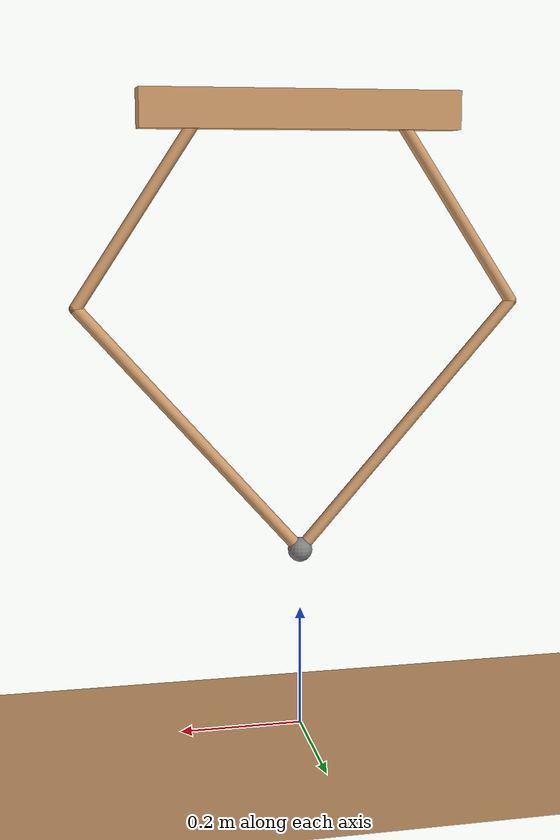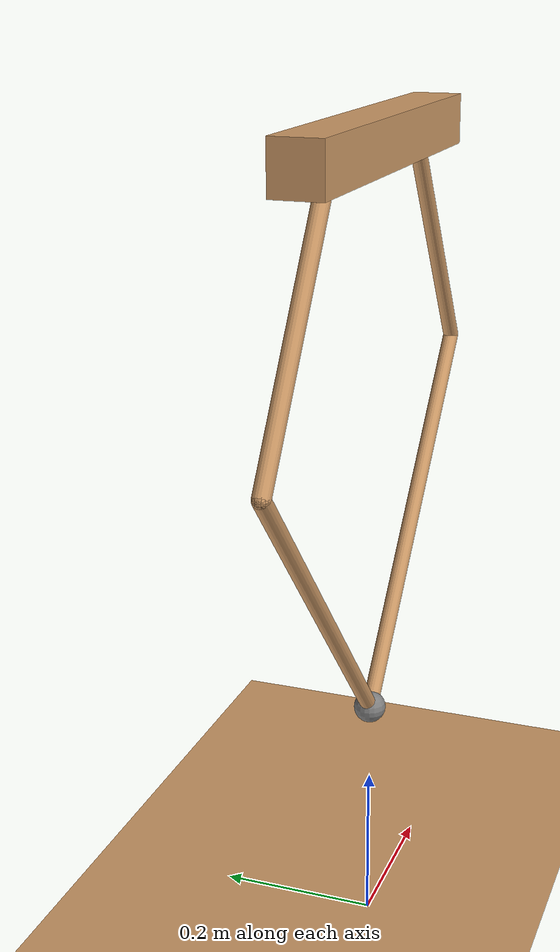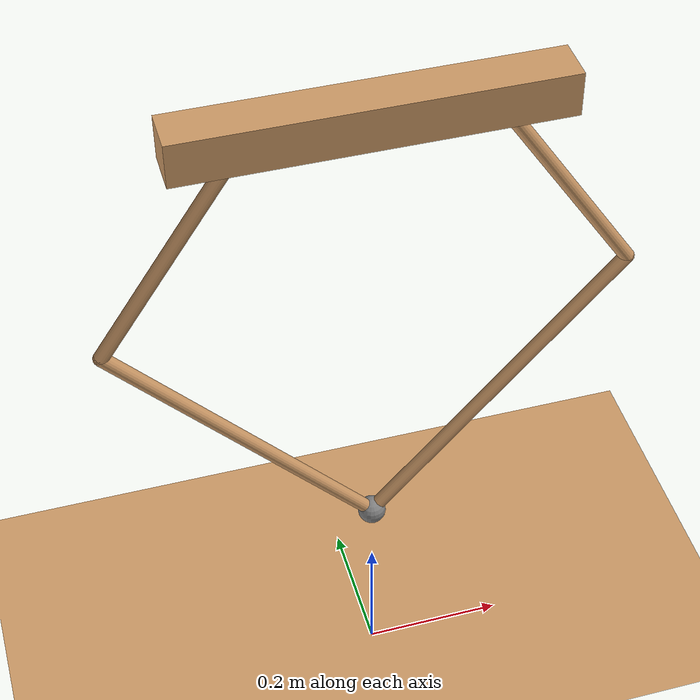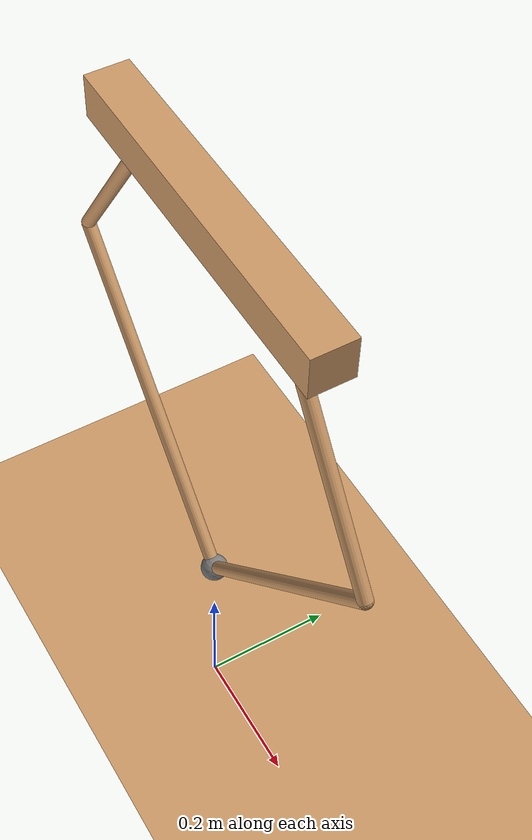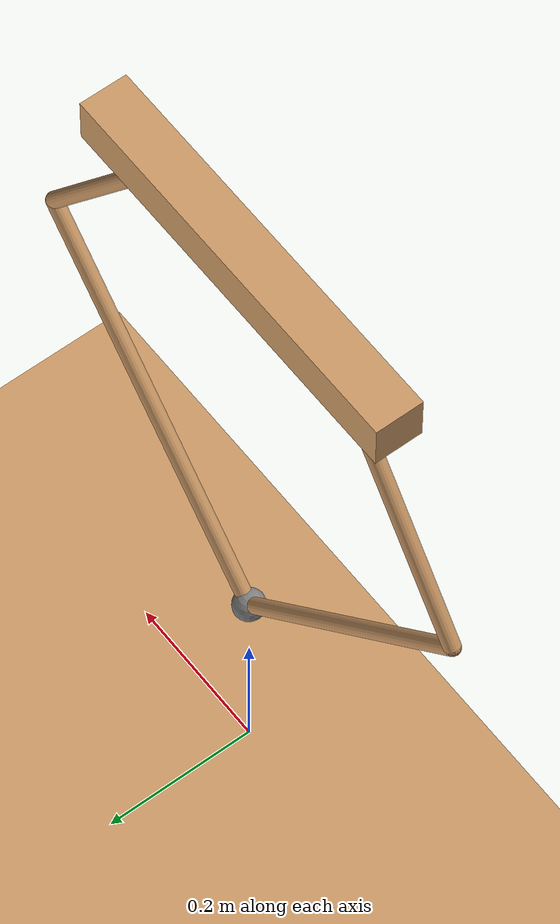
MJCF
<mujoco model="jumping robot">

<default>
  <geom rgba=".8 .6 .4 1" friction="0.005 0.005 0.0001"/>
  <joint damping="0.5"/>
</default>

  <option gravity = "0 0 -9.81" />

  <asset>
    <texture type="2d" name="groundplane" builtin="checker"
             mark="edge" rgb1=".25 .25 .25" rgb2=".3 .3 .3"
             markrgb=".8 .8 .8" width="300" height="300"/>
    <material name="groundplane" texture="groundplane"
              texuniform="true" texrepeat="5 5" reflectance="0.2"/>
  </asset>

  <worldbody>
    <geom type="plane" material="groundplane" size="5 5 0.1"/>
    <light pos="0 1 1" dir="0 -1 -1" diffuse="1 1 1"/>

    <body name="main_box" pos="0 0 1">
      <joint name="slider_of_box" type="slide"/>
      <geom type="box" size="0.25 0.03 0.03"/>

      <body name="right_hip" pos="0.15 0 0">
        <joint name="right_hip_joint" type="hinge" axis="0 1 0"/>
        <geom type="capsule" size="0.01" fromto="0 0 0  0.2 0 -0.3"/>
        <body name="right_knee" pos="0.2 0 -0.3">
          <joint name="right_knee_joint" type="hinge" axis="0 1 0"/>
          <geom type="capsule" size="0.01" fromto="0 0 0  -0.35 0 -0.4"/>
          <body name="right_foot" pos="-0.35 0 -0.4">
            <geom name="right_foot_pad" type="sphere" size="0.01"/>
            <site name="right_foot_site" type="sphere" size="0.02"/>
          </body>
        </body>
      </body>

      <body name="left_hip" pos="-0.15 0 0">
        <joint name="left_hip_joint" type="hinge" axis="0 1 0"/>
        <geom type="capsule" size="0.01" fromto="0 0 0  -0.2 0 -0.3"/>
        <body name="left_knee" pos="-0.2 0 -0.3">
          <joint name="left_knee_joint" type="hinge" axis="0 1 0"/>
          <geom type="capsule" size="0.01" fromto="0 0 0  0.35 0 -0.4"/>
          <body name="left_foot" pos="0.35 0 -0.4">
            <geom name="left_foot_pad" type="sphere" size="0.01"/>
            <site name="left_foot_site" type="sphere" size="0.02"/>
          </body>
        </body>
      </body>
    </body>

  </worldbody>

  <actuator>
    <general name="right_hip_motor" joint="right_hip_joint"
             gaintype="fixed"  gainprm="30"
             biastype="affine" biasprm="0 -45 -2.643"
             forcelimited="true" forcerange="-74 74"
             ctrlrange="-1.0 1.0"/>
    <general name="left_hip_motor"  joint="left_hip_joint"
             gaintype="fixed"  gainprm="30"
             biastype="affine" biasprm="0 -45 -2.643"
             forcelimited="true" forcerange="-74 74"
             ctrlrange="-1.0 1.0"/>
  </actuator>

  <equality>
    <connect site1="right_foot_site" site2="left_foot_site"/>
  </equality>

  <sensor>
    <touch name="right_foot_touch" site="right_foot_site"/>
    <touch name="left_foot_touch"  site="left_foot_site"/>
    <jointvel name="main_box_vz"   joint="slider_of_box"/>

    <actuatorfrc name="right_hip_torque" actuator="right_hip_motor"/>
    <actuatorvel name="right_hip_omega"  actuator="right_hip_motor"/>
    <actuatorfrc name="left_hip_torque"  actuator="left_hip_motor"/>
    <actuatorvel name="left_hip_omega"   actuator="left_hip_motor"/>
  </sensor>

</mujoco>
